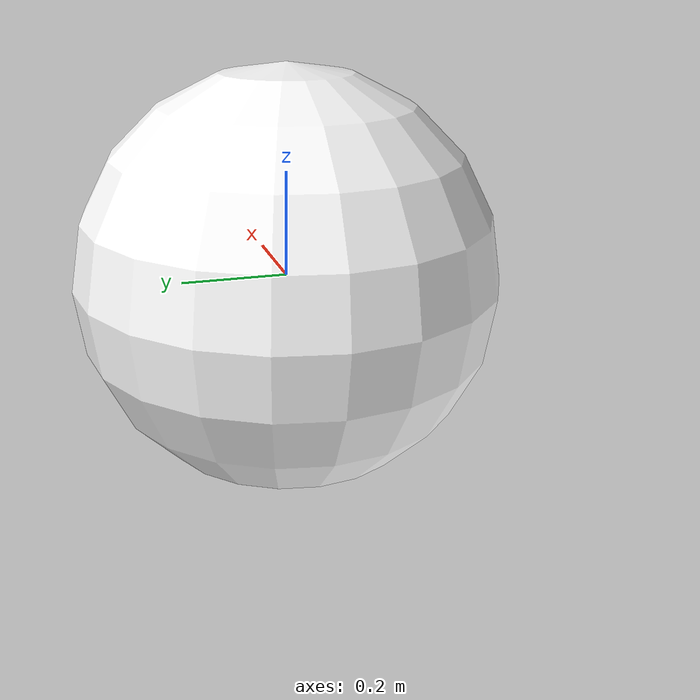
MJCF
<mujoco model="spacecraft_nd">
  <compiler angle="radian" inertiafromgeom="false"/>
  <option timestep="1e-3" gravity="0 0 0" integrator="implicit"/>

  <default>
    <joint armature="0.0" damping="0.0" stiffness="0"/>
    <geom contype="0" conaffinity="0" friction="0 0 0" rgba="0.8 0.6 0.4 1"/>
    <motor ctrllimited="true" ctrlrange="-100 100"/>
  </default>

    <asset>
      <texture name="skybox_tex" type="skybox" file="textures/stars_cropped.png"/>
      <material name="skybox_mat" texture="skybox_tex" texuniform="true" reflectance="0"/>

      <texture name="earth_tex" type="2d" file="textures/earth_day.png"/>
      <material name="earth_mat" texture="earth_tex" texuniform="true" specular="0.2" shininess="0.5"/>

      <!-- satellite mesh -->
      <mesh name="sat_mesh" file="meshes/sat/Satellite.stl" scale="0.001 0.001 0.001"/>
  </asset>

  <worldbody>
    <!-- Spacecraft 1 -->
    <body name="spacecraft">
      <freejoint name="base6dof"/>
      <geom type="mesh" mesh="sat_mesh" rgba="0.7 0.7 0.8 1" contype="0" conaffinity="0"/>

      <inertial pos="0 0 0" mass="1" diaginertia="1 1 1"/>
      <site name="spacecraft_com" pos="0 0 0" size="0.005" xyaxes="1 0 0 0 1 0"/>
      <geom name="spacecraft_axis_x" type="capsule" fromto="0 0 0  0.2 0 0" size="0.0015" rgba="1 0 0 1"/>
      <geom name="spacecraft_axis_y" type="capsule" fromto="0 0 0  0 0.2 0" size="0.0015" rgba="0 1 0 1"/>
      <geom name="spacecraft_axis_z" type="capsule" fromto="0 0 0  0 0 0.2" size="0.0015" rgba="0 0 1 1"/>
    </body>

    <!-- Spacecraft 2 -->
    <body name="spacecraft2">
      <freejoint name="base6dof2"/>

      <!-- was: sphere -->
      <geom type="mesh" mesh="sat_mesh"
            rgba="0.8 0.2 0.2 1"
            contype="0" conaffinity="0"/>

      <inertial pos="0 0 0" mass="1" diaginertia="1 1 1"/>
      <site name="spacecraft2_com" pos="0 0 0" size="0.005" xyaxes="1 0 0 0 1 0"/>
      <geom name="spacecraft2_axis_x" type="capsule" fromto="0 0 0  0.2 0 0" size="0.0015" rgba="1 0 0 1"/>
      <geom name="spacecraft2_axis_y" type="capsule" fromto="0 0 0  0 0.2 0" size="0.0015" rgba="0 1 0 1"/>
      <geom name="spacecraft2_axis_z" type="capsule" fromto="0 0 0  0 0 0.2" size="0.0015" rgba="0 0 1 1"/>
    </body>

    <!-- Spacecraft 3 -->
    <body name="spacecraft3">
      <freejoint name="base6dof3"/>

      <!-- was: sphere -->
      <geom type="mesh" mesh="sat_mesh"
            rgba="0.2 0.8 0.2 1"
            contype="0" conaffinity="0"/>

      <inertial pos="0 0 0" mass="1" diaginertia="1 1 1"/>
      <site name="spacecraft3_com" pos="0 0 0" size="0.005" xyaxes="1 0 0 0 1 0"/>
      <geom name="spacecraft3_axis_x" type="capsule" fromto="0 0 0  0.2 0 0" size="0.0015" rgba="1 0 0 1"/>
      <geom name="spacecraft3_axis_y" type="capsule" fromto="0 0 0  0 0.2 0" size="0.0015" rgba="0 1 0 1"/>
      <geom name="spacecraft3_axis_z" type="capsule" fromto="0 0 0  0 0 0.2" size="0.0015" rgba="0 0 1 1"/>
    </body>

    <!-- Spacecraft 4 -->
    <body name="spacecraft4">
      <freejoint name="base6dof4"/>

      <!-- was: sphere -->
      <geom type="mesh" mesh="sat_mesh"
            rgba="0.8 0.8 0.2 1"
            contype="0" conaffinity="0"/>

      <inertial pos="0 0 0" mass="1" diaginertia="1 1 1"/>
      <site name="spacecraft4_com" pos="0 0 0" size="0.005" xyaxes="1 0 0 0 1 0"/>
      <geom name="spacecraft4_axis_x" type="capsule" fromto="0 0 0  0.2 0 0" size="0.0015" rgba="1 0 0 1"/>
      <geom name="spacecraft4_axis_y" type="capsule" fromto="0 0 0  0 0.2 0" size="0.0015" rgba="0 1 0 1"/>
      <geom name="spacecraft4_axis_z" type="capsule" fromto="0 0 0  0 0 0.2" size="0.0015" rgba="0 0 1 1"/>
    </body>

    <!-- Spacecraft 5 -->
    <body name="spacecraft5">
      <freejoint name="base6dof5"/>

      <!-- was: sphere -->
      <geom type="mesh" mesh="sat_mesh"
            rgba="0.6 0.4 0.9 1"
            contype="0" conaffinity="0"/>

      <inertial pos="0 0 0" mass="1" diaginertia="1 1 1"/>
      <site name="spacecraft5_com" pos="0 0 0" size="0.005" xyaxes="1 0 0 0 1 0"/>
      <geom name="spacecraft5_axis_x" type="capsule" fromto="0 0 0  0.2 0 0" size="0.0015" rgba="1 0 0 1"/>
      <geom name="spacecraft5_axis_y" type="capsule" fromto="0 0 0  0 0.2 0" size="0.0015" rgba="0 1 0 1"/>
      <geom name="spacecraft5_axis_z" type="capsule" fromto="0 0 0  0 0 0.2" size="0.0015" rgba="0 0 1 1"/>
    </body>

    <!-- Earth -->
    <body name="earth" pos="0 0 0">
      <geom type="sphere" size="0.4" rgba="1 1 1 0.9" material="earth_mat" contype="0" conaffinity="0" friction="0 0 0" density="0"/>
      <geom name="earth_axis_x" type="capsule" fromto="0 0 0  0.2 0 0" size="0.01" rgba="1 0 0 1"/>
      <geom name="earth_axis_y" type="capsule" fromto="0 0 0  0 0.2 0" size="0.01" rgba="0 1 0 1"/>
      <geom name="earth_axis_z" type="capsule" fromto="0 0 0  0 0 0.2" size="0.01" rgba="0 0 1 1"/>
    </body>

    <light name="sun_light" pos="0 0 5" dir="0 0 -1" diffuse="0.5 0.5 0.5" specular="0.1 0.1 0.1" ambient="0 0 0"/>
    <camera name="fixed_camera" pos="-150 -150 -150" quat="1 0 0 0" fovy="45"/>

     <!-- Debris -->
    <body name="debris">
      <freejoint name="debris6dof"/>
      <geom type="box" size="0.01 0.01 0.01" rgba="0.9 0.9 0.2 1"/>

      <inertial pos="0.0 0.01 0" mass="1" diaginertia="1.0 1.0 1.0"/>

      <site name="debris_com" pos="0 0 0"
            size="0.0001" rgba="1 1 0 1"
            xyaxes="1 0 0 0 1 0"/>

      <geom name="debris_axis_x" type="capsule"
            fromto="0 0 0  0.06 0 0"
            size="0.003" rgba="1 0 0 1"/>
      <geom name="debris_axis_y" type="capsule"
            fromto="0 0 0  0 0.06 0"
            size="0.003" rgba="0 1 0 1"/>
      <geom name="debris_axis_z" type="capsule"
            fromto="0 0 0  0 0 0.06"
            size="0.003" rgba="0 0 1 1"/>
    </body>

  </worldbody>

  <actuator>
    <motor name="F_world_x" joint="base6dof" gear="1 0 0 0 0 0"/>
    <motor name="F_world_y" joint="base6dof" gear="0 1 0 0 0 0"/>
    <motor name="F_world_z" joint="base6dof" gear="0 0 1 0 0 0"/>
    <motor name="M_body_x" joint="base6dof" gear="0 0 0 1 0 0"/>
    <motor name="M_body_y" joint="base6dof" gear="0 0 0 0 1 0"/>
    <motor name="M_body_z" joint="base6dof" gear="0 0 0 0 0 1"/>
  </actuator>
</mujoco>
